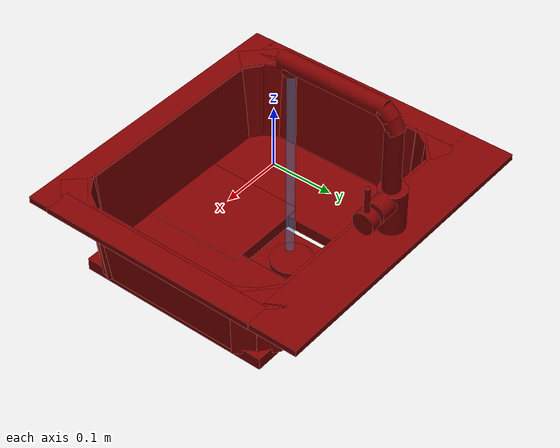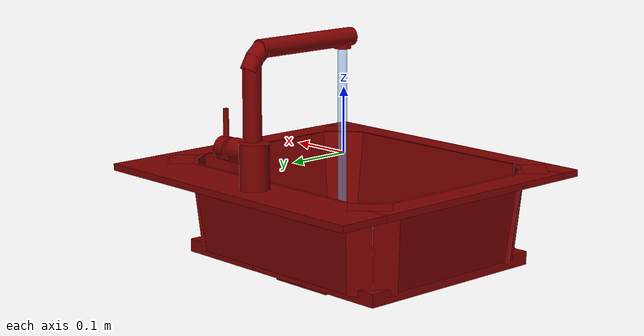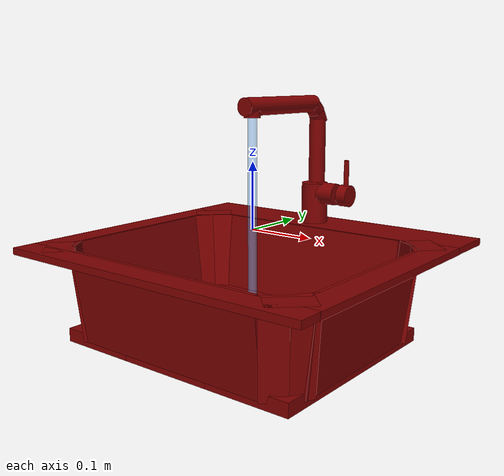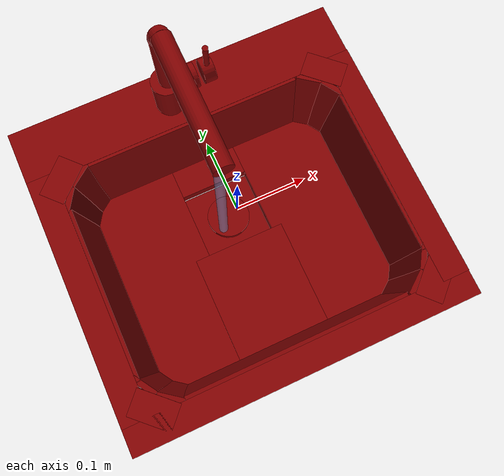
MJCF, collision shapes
<?xml version='1.0' encoding='UTF-8'?>
<mujoco model="model">
  <option timestep="0.002" gravity="0.0 0.0 -9.81"/>
  <compiler angle="radian"/>
  <asset>
    <mesh file="visuals/handle.obj" name="handle_vis"/>
    <mesh file="visuals/Body001.obj" name="Body001_vis"/>
    <mesh file="visuals/Funnel001.obj" name="Funnel001_vis"/>
    <mesh file="visuals/spout.obj" name="spout_vis"/>
    <texture file="visuals/T_BC001.png" name="Body001_material" type="2d"/>
    <material name="Body001_material" rgba="1 1 1 1.0" texture="Body001_material" shininess="0.1" specular="4"/>
    <texture file="visuals/T_BC001.png" name="handle_material" type="2d"/>
    <material name="handle_material" rgba="1 1 1 1.0" texture="handle_material" shininess="0.1" specular="4"/>
    <texture file="visuals/T_BC001.png" name="Funnel001_material" type="2d"/>
    <material name="Funnel001_material" rgba="1 1 1 1.0" texture="Funnel001_material" shininess="0.1" specular="4"/>
    <texture file="visuals/T_BC001.png" name="spout_material" type="2d"/>
    <material name="spout_material" rgba="1 1 1 1.0" texture="spout_material" shininess="0.1" specular="4"/>
  </asset>
  <default>
    <default class="visual">
      <geom conaffinity="0" contype="0" group="1" type="mesh"/>
    </default>
    <default class="collision">
      <geom group="0" rgba="0.5 0 0 0.5"/>
    </default>
    <default class="spawn">
      <geom group="0" rgba="1 1 1 0.5" contype="0" conaffinity="0"/>
      <site group="0" rgba="1 1 1 0.5"/>
    </default>
    <default class="region">
      <geom group="1" conaffinity="0" contype="0" rgba="0 1 0 0"/>
    </default>
  </default>
  <worldbody>
    <body>
      <body name="object">
        <geom mesh="Body001_vis" type="mesh" solimp="0.998 0.998 0.001" solref="0.001 1" friction="0.95 0.3 0.1" class="visual" material="Body001_material"/>
        <geom class="collision" type="box" pos="-0.2331560254096985 -0.021838441491127014 -0.025929927825927734" size="0.019691750407218933 0.18195529282093048 0.005138556472957134" quat="1.0 0.0 0.0 0.0"/>
        <geom class="collision" type="box" pos="0.1766827553510666 0.13587839901447296 -0.08879967033863068" size="0.01873820275068283 0.004184445831924677 0.06800833344459534" quat="0.9469715356826782 -0.0522906593978405 0.017479626461863518 -0.3165518045425415"/>
        <geom class="collision" type="box" pos="0.20691318809986115 0.14548984169960022 -0.025929927825927734" size="0.031084967777132988 0.01889953948557377 0.005138600245118141" quat="1.810242054034461e-07 -0.3682537376880646 -0.9297253489494324 -7.17016561679884e-08"/>
        <geom class="collision" type="box" pos="0.2330050766468048 -0.021838441491127014 -0.025929927825927734" size="0.019691763445734978 0.18195538222789764 0.005138559732586145" quat="1.0 0.0 0.0 0.0"/>
        <geom class="collision" type="box" pos="-0.00043735280632972717 0.19559119641780853 -0.025929927825927734" size="0.2524093985557556 0.04357519373297691 0.0051385629922151566" quat="1.0 0.0 0.0 0.0"/>
        <geom class="collision" type="box" pos="-0.001327168196439743 0.1438380628824234 -0.08879967033863068" size="0.16310478746891022 0.004184445831924677 0.06800833344459534" quat="0.9984789490699768 -0.05513473600149155 0.0 0.0"/>
        <geom class="collision" type="box" pos="0.2002488076686859 0.10959528386592865 -0.08870312571525574" size="0.01873820275068283 0.004184445831924677 0.06800833344459534" quat="0.8756998181343079 -0.04835504665970802 0.02648831345140934 -0.4796978235244751"/>
        <geom class="collision" type="box" pos="0.20524883270263672 -0.02733384072780609 -0.08879967033863068" size="0.1264975368976593 0.004184448625892401 0.06800833344459534" quat="0.7060312628746033 -0.03898615017533302 0.038986146450042725 -0.7060312032699585"/>
        <geom class="collision" type="box" pos="-0.2049812376499176 -0.02733384072780609 -0.08879967033863068" size="0.1264975368976593 0.004184448625892401 0.06800833344459534" quat="0.038986172527074814 0.7060312628746033 0.7060312032699585 0.038986172527074814"/>
        <geom class="collision" type="box" pos="-0.1999812126159668 0.10959528386592865 -0.08870312571525574" size="0.01873820275068283 0.004184445831924677 0.06800833344459534" quat="0.04835505783557892 0.8756998181343079 0.4796978235244751 0.026488326489925385"/>
        <geom class="collision" type="box" pos="-0.17641516029834747 0.13587839901447296 -0.08879967033863068" size="0.01873820275068283 0.004184445831924677 0.06800833344459534" quat="0.052290596067905426 0.9469715356826782 0.3165518045425415 0.017479605972766876"/>
        <geom class="collision" type="box" pos="-0.17641516029834747 -0.1838652640581131 -0.08879967033863068" size="0.01873820275068283 0.004184445831924677 0.06800833344459534" quat="0.31655192375183105 -0.017479615285992622 -0.0522906519472599 0.9469715356826782"/>
        <geom class="collision" type="box" pos="-0.1999812126159668 -0.15758217871189117 -0.08870312571525574" size="0.01873820275068283 0.004184445831924677 0.06800833344459534" quat="0.4796978831291199 -0.026488324627280235 -0.04835505783557892 0.8756997585296631"/>
        <geom class="collision" type="box" pos="0.2002488076686859 -0.15758217871189117 -0.08870312571525574" size="0.01873820275068283 0.004184445831924677 0.06800833344459534" quat="0.026488494127988815 0.4796978235244751 -0.8756998181343079 -0.048354972153902054"/>
        <geom class="collision" type="box" pos="-0.001327168196439743 -0.19182492792606354 -0.08879967033863068" size="0.16310478746891022 0.004184445831924677 0.06800833344459534" quat="1.944110294971324e-07 -1.073509725557642e-08 -0.9984789490699768 -0.05513447895646095"/>
        <geom class="collision" type="box" pos="0.1766827553510666 -0.1838652640581131 -0.08879967033863068" size="0.01873820275068283 0.004184445831924677 0.06800833344459534" quat="0.017479773610830307 0.31655168533325195 -0.946971595287323 -0.052290525287389755"/>
        <geom class="collision" type="box" pos="-0.00016595050692558289 0.03370849788188934 -0.1823064088821411" size="0.054596878588199615 0.054596878588199615 0.008153142407536507" quat="1.0 0.0 0.0 0.0"/>
        <geom class="collision" type="box" pos="-0.12850259244441986 -0.025021180510520935 -0.15661686658859253" size="0.07350417971611023 0.16078239679336548 0.010094896890223026" quat="1.0 0.0 0.0 0.0"/>
        <geom class="collision" type="box" pos="0.1263556033372879 -0.025021180510520935 -0.15669570863246918" size="0.07350423187017441 0.16078250110149384 0.010016064159572124" quat="1.0 0.0 0.0 0.0"/>
        <geom class="collision" type="box" pos="-0.004293888807296753 -0.1010553315281868 -0.15624743700027466" size="0.07350428402423859 0.08474882692098618 0.010464346036314964" quat="1.0 0.0 0.0 0.0"/>
        <geom class="collision" type="box" pos="-0.004293888807296753 0.11142109334468842 -0.1567164808511734" size="0.07350432872772217 0.024150550365447998 0.009995308704674244" quat="1.0 0.0 0.0 0.0"/>
        <geom class="collision" type="cylinder" pos="-0.019057834520936012 0.19116154313087463 0.007156312465667725" size="0.021768789738416672 0.03878086805343628" quat="1.0 0.0 0.0 0.0"/>
        <geom class="collision" type="cylinder" pos="0.0065930793061852455 0.19116154313087463 0.029407337307929993" size="0.017791669815778732 0.017488157376646996" quat="0.7071068286895752 -0.0 0.7071067690849304 0.0"/>
        <geom class="collision" type="box" pos="-0.00043735280632972717 -0.2193124145269394 -0.025929927825927734" size="0.25241002440452576 0.018899468705058098 0.0051385825499892235" quat="1.0 0.0 0.0 0.0"/>
        <geom class="collision" type="box" pos="0.20691318809986115 -0.19452278316020966 -0.025929927825927734" size="0.031084967777132988 0.01889953948557377 0.005138600245118141" quat="0.9297253489494324 0.0 0.0 0.3682537376880646"/>
        <geom class="collision" type="box" pos="-0.20589414238929749 -0.19452278316020966 -0.025929927825927734" size="0.031084967777132988 0.01889953948557377 0.005138600245118141" quat="1.810242054034461e-07 0.9297253489494324 -0.3682537376880646 -7.17016561679884e-08"/>
        <geom class="collision" type="box" pos="-0.20589414238929749 0.14548982679843903 -0.025929927825927734" size="0.031084967777132988 0.01889953948557377 0.005138600245118141" quat="0.3682536780834198 0.0 0.0 -0.9297253489494324"/>
        <body name="handle">
          <joint axis="1.0 0.0 0.0" pos="0.036877669394016266 0.19203300774097443 0.029037564992904663" limited="true" name="handle_temp_joint" type="hinge" range="-0.7853981633974483 0.7853981633974483" damping="1" frictionloss="1" armature=".01" stiffness="0.01" springref="-0.01"/>
          <joint axis="0.0 1.0 0.0" pos="0.036877669394016266 0.19203300774097443 0.029037564992904663" limited="true" name="handle_joint" type="hinge" range="0.0 0.2617993877991494" damping="1" frictionloss="1" armature=".01" stiffness="0.05"/>
          <geom mesh="handle_vis" type="mesh" solimp="0.998 0.998 0.001" solref="0.001 1" friction="0.95 0.3 0.1" class="visual" material="handle_material"/>
          <geom class="collision" type="cylinder" pos="0.040845006704330444 0.19197435677051544 0.02913159877061844" size="0.017415083944797516 0.00877403188496828" quat="0.7064290046691895 0.0 0.7077838778495789 0.0"/>
          <geom class="collision" type="cylinder" pos="0.04135185852646828 0.19197435677051544 0.06579839438199997" size="0.00414998596534133 0.021215196698904037" quat="0.9999995231628418 0.0 0.0009582693455740809 0.0"/>
        </body>
        <body name="Funnel001">
          <joint axis="0.0 0.0 1.0" pos="4.8317015171051025e-06 0.03357996419072151 -0.16636201739311218" limited="true" name="Funnel001_joint" range="0.0 0.06" type="slide" damping="1" frictionloss="1" armature=".01" stiffness="0.05" springref="-15"/>
          <geom mesh="Funnel001_vis" type="mesh" solimp="0.998 0.998 0.001" solref="0.001 1" friction="0.95 0.3 0.1" class="visual" material="Funnel001_material"/>
          <geom class="collision" type="cylinder" pos="4.8317015171051025e-06 0.0335799902677536 -0.1661977618932724" size="0.03388557210564613 0.004320512525737286" quat="1.0 0.0 0.0 0.0"/>
        </body>
        <body name="spout">
          <joint axis="0.0 0.0 1.0" pos="-0.015439465641975403 0.1912536919116974 0.10896764695644379" limited="true" name="spout_joint" range="-0.7853981633974483 0.7853981633974483" type="hinge" damping="1" frictionloss="1" armature=".01" stiffness="0.01" springref="-0.01"/>
          <site type="cylinder" rgba="0.5 0.75 1 0.5" size="0.007027625571936369 0.167381152510643" pos="-0.015426764264702797 0.018152445554733276 -0.002365254331380129" name="water"/>
          <geom mesh="spout_vis" type="mesh" solimp="0.998 0.998 0.001" solref="0.001 1" friction="0.95 0.3 0.1" class="visual" material="spout_material"/>
          <geom class="collision" type="cylinder" pos="-0.01551450602710247 0.19087651371955872 0.10182854533195496" size="0.01354062557220459 0.053485482931137085" quat="0.9999995231628418 0.0 -0.0009582692291587591 0.0"/>
          <geom class="collision" type="cylinder" pos="-0.015466643497347832 0.17859075963497162 0.17095765471458435" size="0.01354062557220459 0.010568520985543728" quat="0.9064923524856567 0.42222118377685547 -0.0009546542423777282 -8.309984696097672e-05"/>
          <geom class="collision" type="cylinder" pos="-0.01543225347995758 0.1899796426296234 0.1568099558353424" size="0.01354062557220459 0.010568520054221153" quat="0.9660386443138123 0.2583959698677063 -0.0009257207857444882 -0.00024761143140494823"/>
          <geom class="collision" type="cylinder" pos="-0.015563370659947395 0.08864782005548477 0.1773839145898819" size="0.01354062557220459 0.0882638618350029" quat="0.7078102827072144 0.7064019441604614 -0.0009256413904950023 0.0002479060203768313"/>
          <geom class="collision" type="cylinder" pos="-0.015484249219298363 0.01748548448085785 0.1669265776872635" size="0.012687318958342075 0.005486423149704933" quat="0.9999990463256836 -0.0009957975707948208 -0.0004792321415152401 0.0008298233151435852"/>
        </body>
        <geom class="region" name="reg_basin" type="box" pos="7.152557373046875e-07 -0.022572040557861328 -0.09278823994100094" size="0.21365366876125336 0.1775168478488922 0.06290859915316105"/>
        <geom class="region" name="reg_main" type="box" pos="7.450580596923828e-09 0.0 -0.10562358796596527" size="0.2526721656322479 0.238953098654747 0.08451078832149506"/>
      </body>
    </body>
  </worldbody>
  <actuator>
    <motor name="handle_joint_actuator" joint="handle_joint" gear="10"/>
    <motor name="Funnel001_joint_actuator" joint="Funnel001_joint" gear="10"/>
    <motor name="spout_joint_actuator" joint="spout_joint" gear="10"/>
  </actuator>
</mujoco>
